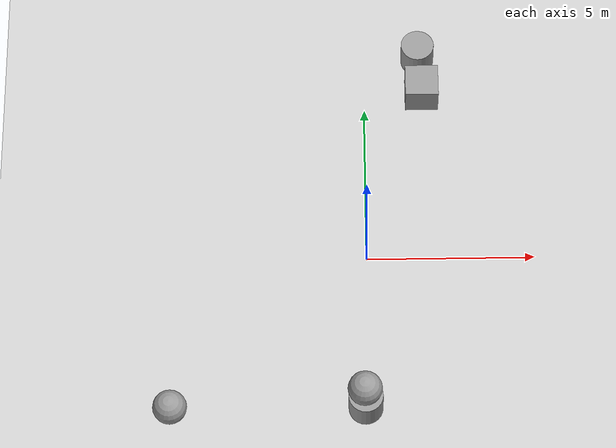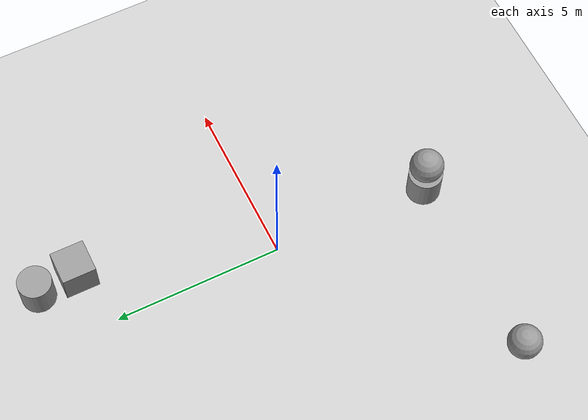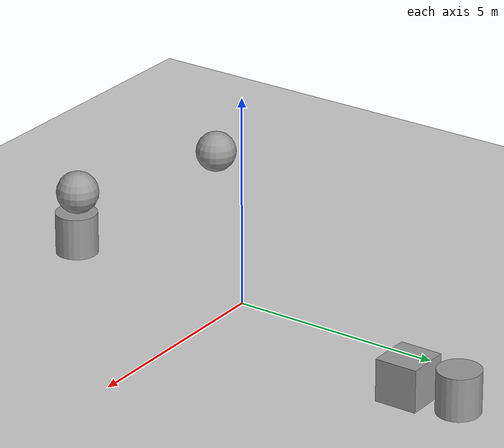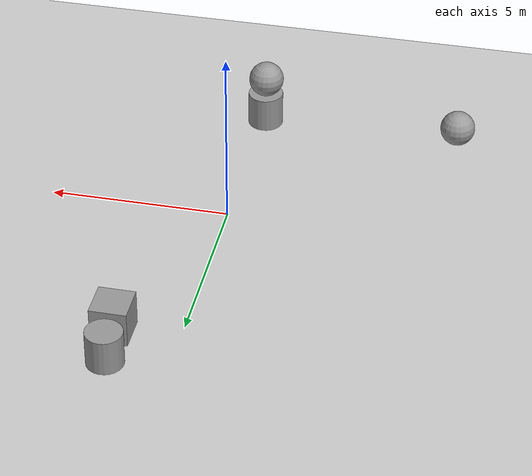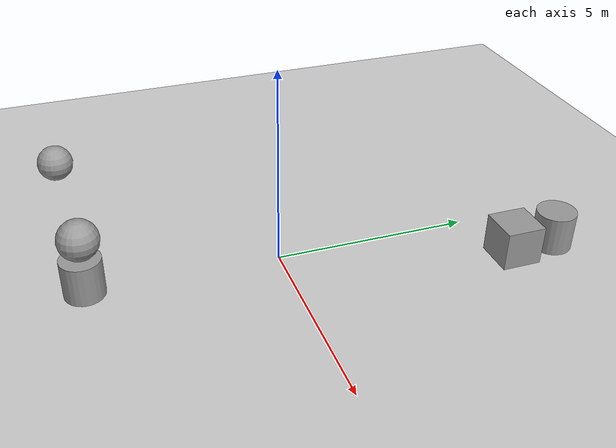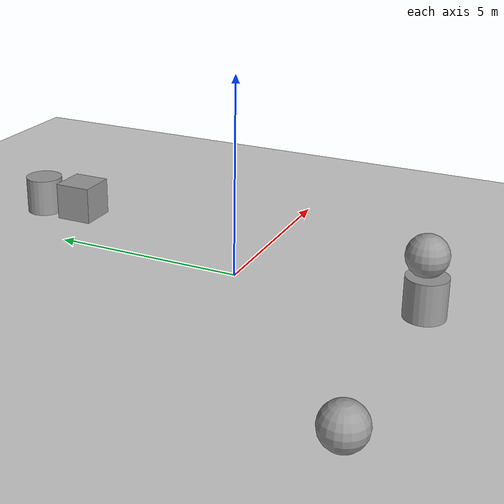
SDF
<sdf version="1.6">
 <world name="default">
  <light name="sun" type="directional">
   <pose>0 0 10 0 -0 0</pose>
   <diffuse>0.8 0.8 0.8 1</diffuse>
   <specular>0.2 0.2 0.2 1</specular>
   <attenuation>
    <range>1000</range>
    <constant>0.9</constant>
    <linear>0.01</linear>
    <quadratic>0.001</quadratic>
   </attenuation>
   <direction>-0.5 0.1 -0.9</direction>
  </light>
  <model name="ground_plane">
   <static>1</static>
   <link name="link">
    <collision name="collision">
     <geometry><plane><normal>0 0 1</normal><size>100 100</size></plane></geometry>
     <surface>
      <contact><collide_bitmask>65535</collide_bitmask></contact>
      <friction><ode><mu>100</mu><mu2>50</mu2></ode></friction>
     </surface>
    </collision>
    <visual name="visual">
     <cast_shadows>0</cast_shadows>
     <geometry><plane><normal>0 0 1</normal><size>100 100</size></plane></geometry>
     <material>
      <script><uri>file://media/materials/scripts/gazebo.material</uri><name>Gazebo/Grey</name></script>
     </material>
    </visual>
   </link>
  </model>
  <gravity>0 0 -9.8</gravity>
  <magnetic_field>6e-06 2.3e-05 -4.2e-05</magnetic_field>
  <atmosphere type="adiabatic"/>
  <physics name="default_physics" default="0" type="ode">
   <max_step_size>0.001</max_step_size>
   <real_time_factor>1</real_time_factor>
   <real_time_update_rate>1000</real_time_update_rate>
  </physics>
  <scene><ambient>0.4 0.4 0.4 1</ambient><background>0.7 0.7 0.7 1</background><shadows>1</shadows></scene>
  <audio><device>default</device></audio>
  <spherical_coordinates>
   <surface_model>EARTH_WGS84</surface_model>
   <latitude_deg>0</latitude_deg>
   <longitude_deg>0</longitude_deg>
   <elevation>0</elevation>
   <heading_deg>0</heading_deg>
  </spherical_coordinates>
  <model name="unit_cylinder">
   <pose>-0.098682 -4.75631 0.499961 -3e-06 -2e-06 1e-06</pose>
   <link name="link">
    <inertial>
     <mass>1</mass>
     <inertia><ixx>0.145833</ixx><ixy>0</ixy><ixz>0</ixz><iyy>0.145833</iyy><iyz>0</iyz><izz>0.125</izz></inertia>
    </inertial>
    <collision name="collision">
     <geometry><cylinder><radius>0.5</radius><length>1</length></cylinder></geometry>
    </collision>
    <visual name="visual">
     <geometry><cylinder><radius>0.5</radius><length>1</length></cylinder></geometry>
     <material>
      <script><name>Gazebo/Grey</name><uri>file://media/materials/scripts/gazebo.material</uri></script>
     </material>
    </visual>
   </link>
  </model>
  <model name="unit_sphere">
   <pose>-0.121746 -4.72453 1.49996 -0.00379 -0.002731 5e-06</pose>
   <link name="link">
    <inertial>
     <mass>1</mass>
     <inertia><ixx>0.1</ixx><ixy>0</ixy><ixz>0</ixz><iyy>0.1</iyy><iyz>0</iyz><izz>0.1</izz></inertia>
    </inertial>
    <collision name="collision"><geometry><sphere><radius>0.5</radius></sphere></geometry></collision>
    <visual name="visual">
     <geometry><sphere><radius>0.5</radius></sphere></geometry>
     <material>
      <script><name>Gazebo/Grey</name><uri>file://media/materials/scripts/gazebo.material</uri></script>
     </material>
    </visual>
   </link>
  </model>
  <model name="unit_cylinder_0">
   <pose>1.64845 6.74226 0.499993 -3e-06 4e-06 0</pose>
   <link name="link">
    <inertial>
     <mass>1</mass>
     <inertia><ixx>0.145833</ixx><ixy>0</ixy><ixz>0</ixz><iyy>0.145833</iyy><iyz>0</iyz><izz>0.125</izz></inertia>
    </inertial>
    <collision name="collision">
     <geometry><cylinder><radius>0.5</radius><length>1</length></cylinder></geometry>
    </collision>
    <visual name="visual">
     <geometry><cylinder><radius>0.5</radius><length>1</length></cylinder></geometry>
     <material>
      <script><name>Gazebo/Grey</name><uri>file://media/materials/scripts/gazebo.material</uri></script>
     </material>
    </visual>
   </link>
  </model>
  <model name="unit_sphere_0">
   <pose>-5.76397 -4.82815 0.5 0 -0 0</pose>
   <link name="link">
    <inertial>
     <mass>1</mass>
     <inertia><ixx>0.1</ixx><ixy>0</ixy><ixz>0</ixz><iyy>0.1</iyy><iyz>0</iyz><izz>0.1</izz></inertia>
    </inertial>
    <collision name="collision"><geometry><sphere><radius>0.5</radius></sphere></geometry></collision>
    <visual name="visual">
     <geometry><sphere><radius>0.5</radius></sphere></geometry>
     <material>
      <script><name>Gazebo/Grey</name><uri>file://media/materials/scripts/gazebo.material</uri></script>
     </material>
    </visual>
   </link>
  </model>
  <model name="unit_box">
   <pose>1.75253 5.53817 0.499995 0 1e-05 0</pose>
   <link name="link">
    <inertial>
     <mass>1</mass>
     <inertia>
      <ixx>0.166667</ixx>
      <ixy>0</ixy>
      <ixz>0</ixz>
      <iyy>0.166667</iyy>
      <iyz>0</iyz>
      <izz>0.166667</izz>
     </inertia>
    </inertial>
    <collision name="collision"><geometry><box><size>1 1 1</size></box></geometry></collision>
    <visual name="visual">
     <geometry><box><size>1 1 1</size></box></geometry>
     <material>
      <script><name>Gazebo/Grey</name><uri>file://media/materials/scripts/gazebo.material</uri></script>
     </material>
    </visual>
   </link>
  </model>
 </world>
</sdf>
